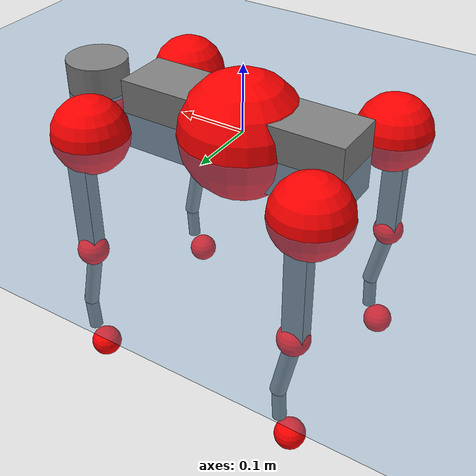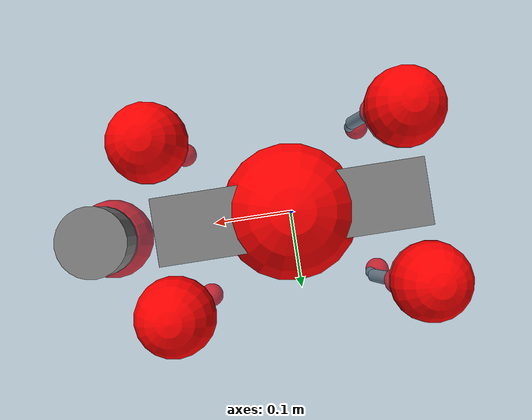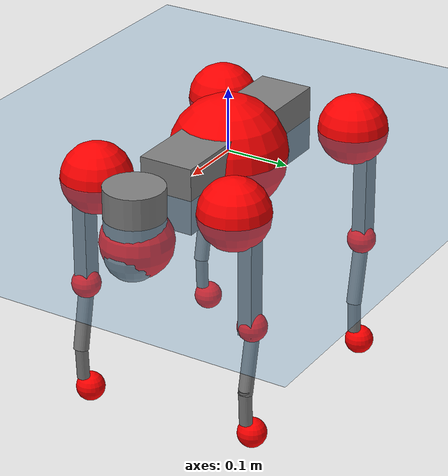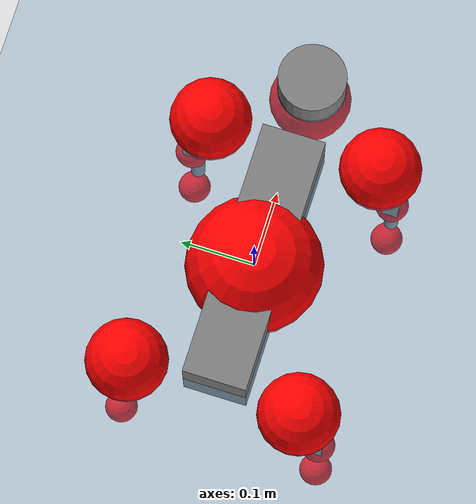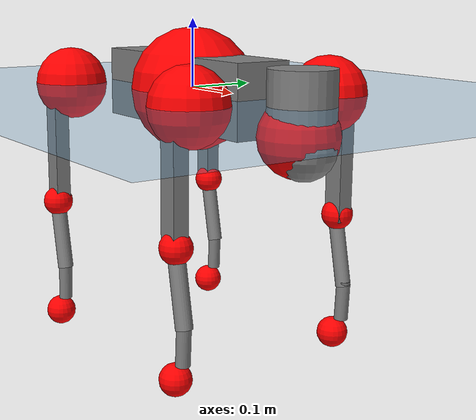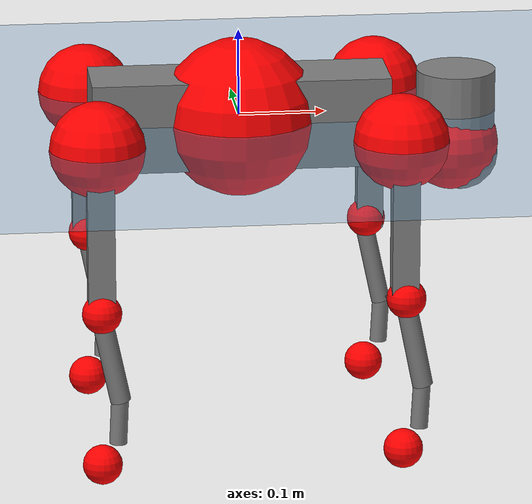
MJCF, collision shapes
<mujoco model="go2">
  <compiler angle="radian" assetdir="assets" balanceinertia="true" inertiafromgeom="false"/>

  <option timestep="0.005" density="1.2" viscosity="2e-05"/>

  <size nkey="1"/>

  <visual>
    <quality shadowsize="8192"/>
    <map shadowclip="0.5"/>
  </visual>

  <default>
    <default class="/">
      <geom contype="0" conaffinity="0" group="1" solref="-1000 -80"/>
      <site size="0.01 0.005 0.005" group="5"/>
      <general forcelimited="true" biastype="affine" gainprm="20" biasprm="0 -20 -0.5"/>
      <default class="go2">
        <joint armature="0.01" damping="0.01" frictionloss="0.2"/>
        <geom condim="1" margin="0.001"/>
        <default class="visual">
          <geom type="mesh" group="2"/>
        </default>
        <default class="collision">
          <geom group="3"/>
          <default class="foot">
            <geom size="0.022 0 0" condim="6" priority="1" friction="0.8 0.02 0.01" solimp="0.015 1 0.022"/>
          </default>
        </default>
        <default class="reward_collision_sphere">
          <geom group="5" rgba="1 0 0 1"/>
        </default>
      </default>
    </default>
  </default>

  <asset>
    <texture type="skybox" colorspace="auto" name="//unnamed_texture_0" builtin="gradient" rgb1="0.95 0.95 0.95" rgb2="0.95 0.95 0.95" width="100" height="600"/>
    <texture type="2d" colorspace="auto" name="texplane" builtin="checker" rgb1="0.345 0.575 0.748" rgb2="0.345 0.575 0.748" markrgb="1 1 1" width="512" height="512"/>
    <material name="MatPlane" class="/" texture="texplane" texuniform="true" texrepeat="2 2" specular="0.9"/>
    <material name="metal" class="/" rgba="0.9 0.95 0.95 1"/>
    <material name="black" class="/" rgba="0 0 0 1"/>
    <material name="white" class="/"/>
    <material name="gray" class="/" rgba="0.671705 0.692426 0.77427 1"/>
    <mesh name="base_0" class="/" file="base_0.obj"/>
    <mesh name="base_1" class="/" file="base_1.obj"/>
    <mesh name="base_2" class="/" file="base_2.obj"/>
    <mesh name="base_3" class="/" file="base_3.obj"/>
    <mesh name="base_4" class="/" file="base_4.obj"/>
    <mesh name="hip_0" class="/" file="hip_0.obj"/>
    <mesh name="hip_1" class="/" file="hip_1.obj"/>
    <mesh name="thigh_0" class="/" file="thigh_0.obj"/>
    <mesh name="thigh_1" class="/" file="thigh_1.obj"/>
    <mesh name="thigh_mirror_0" class="/" file="thigh_mirror_0.obj"/>
    <mesh name="thigh_mirror_1" class="/" file="thigh_mirror_1.obj"/>
    <mesh name="calf_0" class="/" file="calf_0.obj"/>
    <mesh name="calf_1" class="/" file="calf_1.obj"/>
    <mesh name="calf_mirror_0" class="/" file="calf_mirror_0.obj"/>
    <mesh name="calf_mirror_1" class="/" file="calf_mirror_1.obj"/>
    <mesh name="foot" class="/" file="foot.obj"/>
  </asset>

  <worldbody>
    <geom name="floor" class="/" size="100 100 0.125" type="plane" group="0" material="MatPlane"/>
    <light name="toplight_shadow" class="/" pos="0 0 5" dir="0.0990148 0.0990148 -0.990148" type="directional" ambient="0.04 0.04 0.04" diffuse="0.55 0.55 0.55" specular="0.12 0.12 0.12"/>
    <light name="toplight_fill" class="/" pos="0 0 5" dir="0.0990148 0.0990148 -0.990148" type="directional" castshadow="false" ambient="0.04 0.04 0.04" diffuse="0.3 0.3 0.3" specular="0.08 0.08 0.08"/>
    <body name="trunk" childclass="go2" pos="0.000206203 -8.06482e-05 -0.00279802" quat="1 -1.32809e-05 4.44286e-06 7.66961e-06">
      <inertial pos="0.0176893 0.00213298 -0.00185569" quat="-0.000336077 0.712973 -0.00203411 0.701189" mass="5.09263" diaginertia="0.0578717 0.09479 0.0109902"/>
      <joint name="//unnamed_joint_0" type="free" armature="0" damping="0" frictionloss="0"/>
      <geom name="//unnamed_geom_1" class="visual" material="black" mesh="base_0"/>
      <geom name="//unnamed_geom_2" class="visual" material="black" mesh="base_1"/>
      <geom name="//unnamed_geom_3" class="visual" material="black" mesh="base_2"/>
      <geom name="//unnamed_geom_4" class="visual" material="white" mesh="base_3"/>
      <geom name="//unnamed_geom_5" class="visual" material="gray" mesh="base_4"/>
      <geom name="trunk_1" class="collision" size="0.17177 0.0426913 0.0520515" type="box"/>
      <geom name="trunk_2" class="collision" size="0.0456592 0.0410933" pos="0.251647 0 0.00856125" type="cylinder"/>
      <geom name="trunk_3" class="collision" size="0.0429196" pos="0.258711 0 -0.0513675"/>
      <geom name="//unnamed_geom_9" class="reward_collision_sphere" size="0.0913184"/>
      <geom name="//unnamed_geom_10" class="reward_collision_sphere" size="0.054791" pos="0.247232 0 -0.0385256"/>
      <site name="imu" pos="-0.0185761 -0.011444 0.0415627" size="0.00913184"/>
      <camera name="track" pos="0 -2.00091 0" quat="0.707107 0.707107 0 0" mode="trackcom"/>
      <camera name="ego_camera" pos="0.275488 0 0.0385256" quat="-0.5 -0.5 0.5 0.5"/>
      <body name="FL_hip" pos="0.171023 0.0442449 0.00163505" quat="1 -1.84978e-05 -6.28899e-05 -1.55107e-05">
        <inertial pos="-0.00735047 0.00235166 -0.00237779" quat="0.500144 0.495232 0.506132 0.49843" mass="0.515016" diaginertia="0.000472737 0.000579109 0.000226616"/>
        <joint name="FL_hip_joint" pos="0 0 0" axis="0.999988 0.00358803 -0.00325497" range="-1.07844 1.04491" armature="0.0103512" damping="0.016992" frictionloss="0.157526"/>
        <geom name="//unnamed_geom_11" class="visual" material="metal" mesh="hip_0"/>
        <geom name="//unnamed_geom_12" class="visual" material="gray" mesh="hip_1"/>
        <geom name="//unnamed_geom_13" class="collision" size="0.0420065 0.0182637" pos="0 0.0800363 0" quat="0.707107 0.707107 0 0" type="cylinder"/>
        <geom name="//unnamed_geom_14" class="reward_collision_sphere" size="0.054791" pos="0 0.0700317 0"/>
        <body name="FL_thigh" pos="-0.000838702 0.09587 0.00315635" quat="1 -6.26e-05 2.23838e-05 -3.53985e-05">
          <inertial pos="-0.00391031 -0.0223477 -0.0300628" quat="0.829871 0.0843987 -0.0209906 0.551135" mass="0.846906" diaginertia="0.00317992 0.0058658 0.000381622"/>
          <joint name="FL_thigh_joint" pos="0 0 0" axis="-0.0115216 0.999888 -0.00954281" range="-1.62392 3.52694" armature="0.00912833" damping="0.0100908" frictionloss="0.173615"/>
          <geom name="//unnamed_geom_15" class="visual" material="metal" mesh="thigh_0"/>
          <geom name="//unnamed_geom_16" class="visual" material="gray" mesh="thigh_1"/>
          <geom name="//unnamed_geom_17" class="collision" size="0.0972541 0.0111865 0.0155241" pos="0 0 -0.0911773" quat="0.707107 0 0.707107 0" type="box"/>
          <body name="FL_calf" pos="-0.00335869 0.00201014 -0.17979" quat="0.999999 -0.000932796 0.000693232 0.000372229">
            <inertial pos="0.00636396 -0.000486557 -0.12067" quat="0.710568 0.00167563 -0.00555356 0.703605" mass="0.175139" diaginertia="0.000798781 0.00144717 2.3365e-05"/>
            <joint name="FL_calf_joint" pos="0 0 0" axis="-0.0103351 0.999943 0.00263219" range="-2.74386 -0.820964" armature="0.00848709" damping="0.0178541" frictionloss="0.157165"/>
            <geom name="//unnamed_geom_18" class="visual" material="gray" mesh="calf_0"/>
            <geom name="//unnamed_geom_19" class="visual" material="black" mesh="calf_1"/>
            <geom name="FL_calf0" class="collision" size="0.0109582 0.054791" pos="0.00706378 0 -0.0513675" quat="0.994493 0 -0.104807 0" type="cylinder"/>
            <geom name="//unnamed_geom_21" class="collision" size="0.010045 0.0296785" pos="0.0176595 0 -0.126707" quat="0.999688 0 0.0249974 0" type="cylinder"/>
            <geom name="//unnamed_geom_22" class="visual" pos="0 0 -0.182355" quat="1 0 0 0" material="black" mesh="foot"/>
            <geom name="FL_foot" class="foot" size="0.0183716" pos="-0.00176595 0 -0.182355"/>
            <geom name="//unnamed_geom_24" class="reward_collision_sphere" size="0.0228296"/>
            <geom name="//unnamed_geom_25" class="reward_collision_sphere" size="0.0228296" pos="-0.00176595 0 -0.182355"/>
            <site name="FL_foot" class="foot" pos="-0.00176595 0 -0.182355" size="0.00913184"/>
          </body>
        </body>
      </body>
      <body name="FR_hip" pos="0.173063 -0.0488351 0.000112275" quat="0.999999 -0.00130505 0.000337868 -0.000734672">
        <inertial pos="-0.0043317 -0.00259673 0.000463731" quat="0.498152 0.506795 0.499622 0.49536" mass="0.502181" diaginertia="0.000463524 0.000563914 0.00022044"/>
        <joint name="FR_hip_joint" pos="0 0 0" axis="0.999998 -8.47975e-05 -0.00182992" stiffness="0.0120714" range="-0.994097 1.00168" armature="0.0089679" damping="0.018377" frictionloss="0.15862"/>
        <geom name="//unnamed_geom_26" class="visual" pos="0 1.25733e-09 5.39293e-08" quat="4.63268e-05 1 0 0" material="metal" mesh="hip_0"/>
        <geom name="//unnamed_geom_27" class="visual" pos="0 2.03828e-09 -1.33388e-07" quat="4.63268e-05 1 0 0" material="gray" mesh="hip_1"/>
        <geom name="//unnamed_geom_28" class="collision" size="0.0420065 0.0182637" pos="0 -0.0800363 0" quat="0.707107 0.707107 0 0" type="cylinder"/>
        <geom name="//unnamed_geom_29" class="reward_collision_sphere" size="0.054791" pos="0 -0.0700317 0"/>
        <body name="FR_thigh" pos="0.00221123 -0.0931351 -0.000594225" quat="1 0.000377586 1.54396e-05 -6.62304e-05">
          <inertial pos="-0.00388989 0.0234898 -0.0279568" quat="0.550417 -0.0205072 0.0843727 0.830362" mass="0.874159" diaginertia="0.00316534 0.00586713 0.000409312"/>
          <joint name="FR_thigh_joint" pos="0 0 0" axis="-0.00146354 -0.999989 -0.0045194" range="-3.45794 1.52149" armature="0.00929214" damping="0" frictionloss="0.186376"/>
          <geom name="//unnamed_geom_30" class="visual" material="metal" mesh="thigh_mirror_0"/>
          <geom name="//unnamed_geom_31" class="visual" material="gray" mesh="thigh_mirror_1"/>
          <geom name="//unnamed_geom_32" class="collision" size="0.0972541 0.0111865 0.0155241" pos="0 0 -0.0911773" quat="0.707107 0 0.707107 0" type="box"/>
          <body name="FR_calf" pos="0.00229274 0.000725955 -0.179532" quat="1 7.63434e-05 0.000293772 -0.000135811">
            <inertial pos="0.00454317 0.00113401 -0.119322" quat="0.703188 -0.00361507 0.000909661 0.710994" mass="0.18089" diaginertia="0.00082679 0.00146776 2.44423e-05"/>
            <joint name="FR_calf_joint" pos="0 0 0" axis="3.10363e-05 -0.999998 0.00222604" range="0.841607 2.66538" armature="0.00887496" damping="0.00872261" frictionloss="0.167648"/>
            <geom name="//unnamed_geom_33" class="visual" material="gray" mesh="calf_mirror_0"/>
            <geom name="//unnamed_geom_34" class="visual" material="black" mesh="calf_mirror_1"/>
            <geom name="FR_calf0" class="collision" size="0.0118714 0.054791" pos="0.00882973 0 -0.0513675" quat="0.995004 0 -0.0998334 0" type="cylinder"/>
            <geom name="//unnamed_geom_36" class="collision" size="0.010045 0.0296785" pos="0.0176595 0 -0.126707" quat="0.999688 0 0.0249974 0" type="cylinder"/>
            <geom name="//unnamed_geom_37" class="visual" pos="0 0 -0.182355" quat="1 0 0 0" material="black" mesh="foot"/>
            <geom name="FR_foot" class="foot" size="0.0223054" pos="-0.00176595 0 -0.182355"/>
            <geom name="//unnamed_geom_39" class="reward_collision_sphere" size="0.0228296"/>
            <geom name="//unnamed_geom_40" class="reward_collision_sphere" size="0.0228296" pos="-0.00176595 0 -0.182355"/>
            <site name="FR_foot" class="foot" pos="-0.00176595 0 -0.182355" size="0.00913184"/>
          </body>
        </body>
      </body>
      <body name="RL_hip" pos="-0.170111 0.0495311 0.000564643" quat="0.999999 -9.59751e-05 0.000963439 -0.000431797">
        <inertial pos="0.00273549 -0.000494603 -0.000747726" quat="0.506962 0.495421 0.493439 0.504049" mass="0.506764" diaginertia="0.00047907 0.000617708 0.000216313"/>
        <joint name="RL_hip_joint" pos="0 0 0" axis="-0.999672 -0.0247302 0.00667607" range="-1.05605 1.00554" armature="0.00898247" damping="0" frictionloss="0.201941"/>
        <geom name="//unnamed_geom_41" class="visual" pos="-2.33887e-10 0 -4.58473e-08" quat="4.63268e-05 0 1 0" material="metal" mesh="hip_0"/>
        <geom name="//unnamed_geom_42" class="visual" pos="-3.79159e-10 0 -4.066e-08" quat="4.63268e-05 0 1 0" material="gray" mesh="hip_1"/>
        <geom name="//unnamed_geom_43" class="collision" size="0.0420065 0.0182637" pos="0 0.0800363 0" quat="0.707107 0.707107 0 0" type="cylinder"/>
        <geom name="//unnamed_geom_44" class="reward_collision_sphere" size="0.054791" pos="0 0.0700317 0"/>
        <body name="RL_thigh" pos="0.000676075 0.0925583 0.000125652" quat="0.999999 0.00109355 0.000351079 0.000265142">
          <inertial pos="-0.0040124 -0.0248668 -0.0281528" quat="0.829902 0.0901951 -0.0179987 0.550276" mass="0.871534" diaginertia="0.00332241 0.00585286 0.00042628"/>
          <joint name="RL_thigh_joint" pos="0 0 0" axis="-0.00479004 0.999987 -0.00173655" stiffness="0.0141877" range="-0.522157 4.5303" armature="0.00901731" damping="0.00196798" frictionloss="0.180808"/>
          <geom name="//unnamed_geom_45" class="visual" material="metal" mesh="thigh_0"/>
          <geom name="//unnamed_geom_46" class="visual" material="gray" mesh="thigh_1"/>
          <geom name="//unnamed_geom_47" class="collision" size="0.0972541 0.0111865 0.0155241" pos="0 0 -0.0911773" quat="0.707107 0 0.707107 0" type="box"/>
          <body name="RL_calf" pos="0.00284622 -0.00038867 -0.182084" quat="0.999999 0.00123044 -0.000808437 -2.93305e-05">
            <inertial pos="0.00839682 -0.000981419 -0.123714" quat="0.710805 0.00185054 -0.00501979 0.703369" mass="0.180813" diaginertia="0.000808552 0.00153786 2.52849e-05"/>
            <joint name="RL_calf_joint" pos="0 0 0" axis="-8.934e-05 0.999863 0.0165472" range="-2.71644 -0.862123" armature="0.00896714" damping="0.0143915" frictionloss="0.200523"/>
            <geom name="//unnamed_geom_48" class="visual" material="gray" mesh="calf_0"/>
            <geom name="//unnamed_geom_49" class="visual" material="black" mesh="calf_1"/>
            <geom name="RL_calf0" class="collision" size="0.0118714 0.054791" pos="0.00882973 0 -0.0513675" quat="0.995004 0 -0.0998334 0" type="cylinder"/>
            <geom name="//unnamed_geom_51" class="collision" size="0.010045 0.0296785" pos="0.0176595 0 -0.126707" quat="0.999688 0 0.0249974 0" type="cylinder"/>
            <geom name="//unnamed_geom_52" class="visual" pos="0 0 -0.182355" quat="1 0 0 0" material="black" mesh="foot"/>
            <geom name="RL_foot" class="foot" size="0.0167182" pos="-0.00176595 0 -0.182355"/>
            <geom name="//unnamed_geom_54" class="reward_collision_sphere" size="0.0228296"/>
            <geom name="//unnamed_geom_55" class="reward_collision_sphere" size="0.0228296" pos="-0.00176595 0 -0.182355"/>
            <site name="RL_foot" class="foot" pos="-0.00176595 0 -0.182355" size="0.00913184"/>
          </body>
        </body>
      </body>
      <body name="RR_hip" pos="-0.17124 -0.0440113 0.000225852" quat="0.999999 -0.00117517 8.68111e-05 -0.000332255">
        <inertial pos="0.0040331 0.00019308 -0.0014615" quat="0.503107 0.491144 0.495959 0.509593" mass="0.498802" diaginertia="0.000473375 0.000562942 0.000213921"/>
        <joint name="RR_hip_joint" pos="0 0 0" axis="-0.999949 -0.000675937 0.0100724" range="-1.10269 1.03682" armature="0.00781852" damping="0" frictionloss="0.206287"/>
        <geom name="//unnamed_geom_56" class="visual" pos="2.37954e-10 1.25733e-09 -9.97766e-08" quat="2.14617e-09 4.63268e-05 4.63268e-05 -1" material="metal" mesh="hip_0"/>
        <geom name="//unnamed_geom_57" class="visual" pos="3.69099e-10 2.03828e-09 9.27279e-08" quat="2.14617e-09 4.63268e-05 4.63268e-05 -1" material="gray" mesh="hip_1"/>
        <geom name="//unnamed_geom_58" class="collision" size="0.0420065 0.0182637" pos="0 -0.0800363 0" quat="0.707107 0.707107 0 0" type="cylinder"/>
        <geom name="//unnamed_geom_59" class="reward_collision_sphere" size="0.054791" pos="0 -0.0700317 0"/>
        <body name="RR_thigh" pos="0.000952624 -0.0964555 -0.00196426" quat="1 -0.000140995 -0.00011269 -4.89897e-05">
          <inertial pos="-0.00303733 0.0239322 -0.0256656" quat="0.548812 -0.0331396 0.0806723 0.831384" mass="0.861234" diaginertia="0.00315172 0.00571901 0.000401058"/>
          <joint name="RR_thigh_joint" pos="0 0 0" axis="-0.0042588 -0.999973 -0.00594214" stiffness="0.0110948" range="-4.51082 0.476056" armature="0.00997589" damping="0.0156742" frictionloss="0.186738"/>
          <geom name="//unnamed_geom_60" class="visual" material="metal" mesh="thigh_mirror_0"/>
          <geom name="//unnamed_geom_61" class="visual" material="gray" mesh="thigh_mirror_1"/>
          <geom name="//unnamed_geom_62" class="collision" size="0.0972541 0.0111865 0.0155241" pos="0 0 -0.0911773" quat="0.707107 0 0.707107 0" type="box"/>
          <body name="RR_calf" pos="4.87873e-05 -0.00301077 -0.183395" quat="0.999999 0.000666269 -0.00128197 0.000309184">
            <inertial pos="0.00733231 0.000412442 -0.121854" quat="0.704293 0.00518015 -0.00247403 0.709886" mass="0.173507" diaginertia="0.000771876 0.00142254 2.42735e-05"/>
            <joint name="RR_calf_joint" pos="0 0 0" axis="-0.00924103 -0.999952 -0.00333118" stiffness="0.00852297" range="0.892348 2.77641" armature="0.00928421" damping="0.0160077" frictionloss="0.173193"/>
            <geom name="//unnamed_geom_63" class="visual" material="gray" mesh="calf_mirror_0"/>
            <geom name="//unnamed_geom_64" class="visual" material="black" mesh="calf_mirror_1"/>
            <geom name="RR_calf0" class="collision" size="0.0118714 0.054791" pos="0.00882973 0 -0.0513675" quat="0.995004 0 -0.0998334 0" type="cylinder"/>
            <geom name="//unnamed_geom_66" class="collision" size="0.010045 0.0296785" pos="0.0176595 0 -0.126707" quat="0.999688 0 0.0249974 0" type="cylinder"/>
            <geom name="//unnamed_geom_67" class="visual" pos="0 0 -0.182355" quat="1 0 0 0" material="black" mesh="foot"/>
            <geom name="RR_foot" class="foot" size="0.0196356" pos="-0.00176595 0 -0.182355"/>
            <geom name="//unnamed_geom_69" class="reward_collision_sphere" size="0.0228296"/>
            <geom name="//unnamed_geom_70" class="reward_collision_sphere" size="0.0228296" pos="-0.00176595 0 -0.182355"/>
            <site name="RR_foot" class="foot" pos="-0.00176595 0 -0.182355" size="0.00913184"/>
          </body>
        </body>
      </body>
    </body>
  </worldbody>

  <contact>
    <pair class="/" geom1="floor" geom2="FL_foot" name="//unnamed_contact_0"/>
    <pair class="/" geom1="floor" geom2="FR_foot" name="//unnamed_contact_1"/>
    <pair class="/" geom1="floor" geom2="RL_foot" name="//unnamed_contact_2"/>
    <pair class="/" geom1="floor" geom2="RR_foot" name="//unnamed_contact_3"/>
  </contact>

  <actuator>
    <general name="FL_hip" class="/" joint="FL_hip_joint" forcerange="-19.7124 19.7124" gainprm="19.3768" biasprm="0 -19.3768 -0.473147"/>
    <general name="FL_thigh" class="/" joint="FL_thigh_joint" forcerange="-20.3203 20.3203" gainprm="19.3768" biasprm="0 -19.3768 -0.473147"/>
    <general name="FL_calf" class="/" joint="FL_calf_joint" forcerange="-41.3443 41.3443" gainprm="19.3768" biasprm="0 -19.3768 -0.473147"/>
    <general name="FR_hip" class="/" joint="FR_hip_joint" forcerange="-21.3603 21.3603" gainprm="19.3768" biasprm="0 -19.3768 -0.473147"/>
    <general name="FR_thigh" class="/" joint="FR_thigh_joint" forcerange="-22.3665 22.3665" gainprm="19.3768" biasprm="0 -19.3768 -0.473147"/>
    <general name="FR_calf" class="/" joint="FR_calf_joint" forcerange="-38.6958 38.6958" gainprm="19.3768" biasprm="0 -19.3768 -0.473147"/>
    <general name="RL_hip" class="/" joint="RL_hip_joint" forcerange="-23.8271 23.8271" gainprm="19.3768" biasprm="0 -19.3768 -0.473147"/>
    <general name="RL_thigh" class="/" joint="RL_thigh_joint" forcerange="-21.6919 21.6919" gainprm="19.3768" biasprm="0 -19.3768 -0.473147"/>
    <general name="RL_calf" class="/" joint="RL_calf_joint" forcerange="-38.0784 38.0784" gainprm="19.3768" biasprm="0 -19.3768 -0.473147"/>
    <general name="RR_hip" class="/" joint="RR_hip_joint" forcerange="-20.2042 20.2042" gainprm="19.3768" biasprm="0 -19.3768 -0.473147"/>
    <general name="RR_thigh" class="/" joint="RR_thigh_joint" forcerange="-22.3173 22.3173" gainprm="19.3768" biasprm="0 -19.3768 -0.473147"/>
    <general name="RR_calf" class="/" joint="RR_calf_joint" forcerange="-42.6726 42.6726" gainprm="19.3768" biasprm="0 -19.3768 -0.473147"/>
  </actuator>

  <sensor>
    <gyro site="imu" name="imu_angular_velocity"/>
    <velocimeter site="imu" name="imu_linear_velocity"/>
    <framelinvel objtype="site" objname="FL_foot" name="FL_foot_global_linear_velocity"/>
    <framelinvel objtype="site" objname="FR_foot" name="FR_foot_global_linear_velocity"/>
    <framelinvel objtype="site" objname="RL_foot" name="RL_foot_global_linear_velocity"/>
    <framelinvel objtype="site" objname="RR_foot" name="RR_foot_global_linear_velocity"/>
  </sensor>

  <keyframe>
    <key name="home" qpos="0 0 0.325 1 0 0 0 0.1 0.8 -1.5 -0.1 -0.8 1.5 -0.1 0.8 -1.5 0.1 -0.8 1.5"/>
  </keyframe>
</mujoco>
